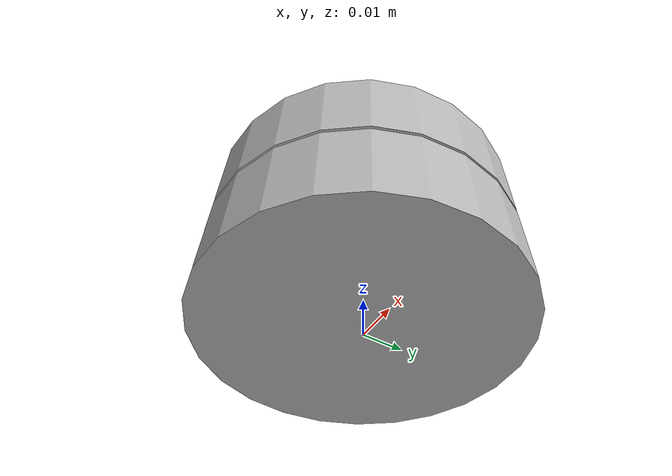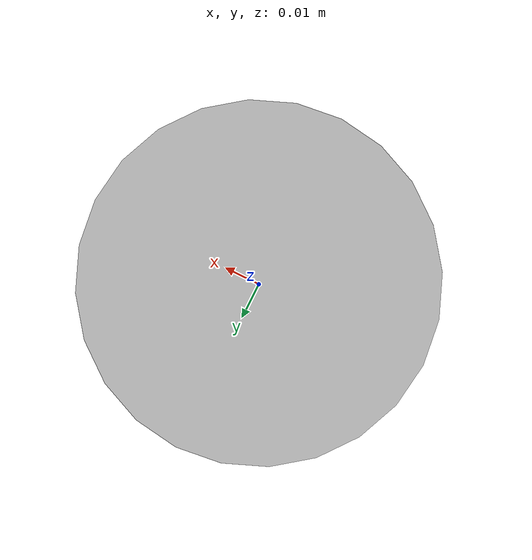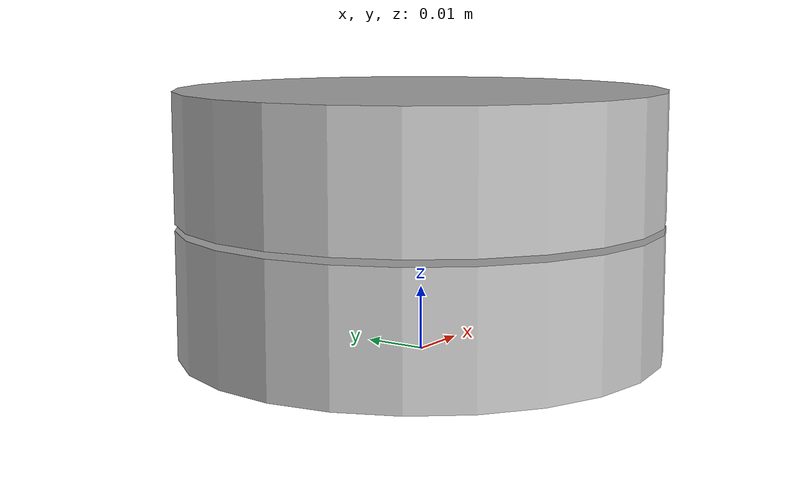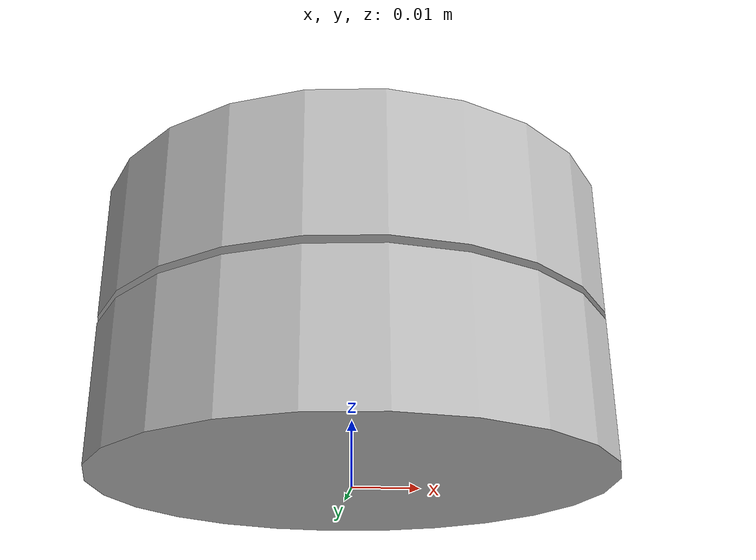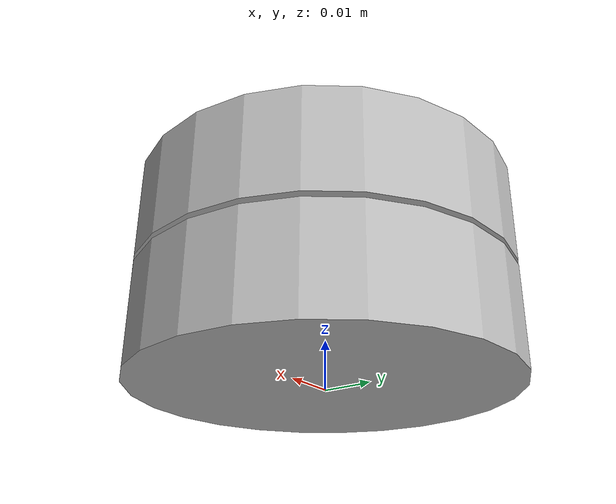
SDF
<?xml version="1.0" ?>
<sdf version="1.5">
<model name="rplidar">
<!-- Give the base link a unique name -->
<link name="base">

    <!-- Offset the base by half the lenght of the cylinder -->
    <pose>0 0 0.01 0 0 0</pose>

    <collision name="base_collision">
      <geometry>
        <cylinder>
          <!-- Radius and length provided by Slamtec -->
          <radius>0.038</radius>
          <length>0.02</length>
        </cylinder>
      </geometry>
    </collision>

    <!-- The visual is mostly a copy of the collision -->
    <visual name="base_visual">
      <geometry>
        <cylinder>
          <radius>0.038</radius>
          <length>0.02</length>
        </cylinder>
      </geometry>
    </visual>
  </link>
  <!-- Give the base link a unique name -->
  <link name="top">
    <!-- Add a ray sensor, and give it a name -->
    <sensor type="ray" name="sensor">

      <!-- Position the ray sensor based on the specification. Also rotate
          it by 90 degrees around the Z-axis to become Horizontal -->
      <pose>0 0 0.002 0 0 1.5707</pose>

      <!-- Enable visualization to see the rays in the GUI -->
      <visualize>true</visualize>

  <topic>range</topic>

      <!-- Set the update rate of the sensor -->
      <update_rate>30</update_rate>
      <ray>
        <noise>
          <!-- Use gaussian noise -->
          <type>gaussian</type>
          <mean>0.0</mean>
          <stddev>0.02</stddev>
        </noise>

        <!-- The scan element contains the horizontal and vertical beams.
            We are leaving out the vertical beams. -->
        <scan>

          <!-- The horizontal beams -->
          <horizontal>
            <!-- The rplidar has 120 beams(samples) -->
            <samples>120</samples>

            <resolution>1</resolution>

            <!-- Minimum angle in radians -->
            <min_angle>0</min_angle>

            <!-- Maximum angle in radians -->
            <max_angle>6.28</max_angle>
          </horizontal>
        </scan>

        <!-- Range defines characteristics of an individual beam -->
        <range>

          <!-- Minimum distance of the beam -->
          <min>0.15</min>

          <!-- Maximum distance of the beam -->
          <max>12</max>

          <!-- Linear resolution of the beam -->
          <resolution>0.02</resolution>
        </range>
      </ray>
      <plugin name="sensor_plugin" filename="libgazebo_ros_laser.so">
    <topicName>/my_car/rplidar/scan</topicName>
    <frameName>/my_robot/odom</frameName>
  </plugin>
    </sensor>

    <!-- Vertically offset the top cylinder by the length of the bottom
        cylinder and half the length of this cylinder. -->
    <pose>0 0 0.031 0 0 0</pose>
    <collision name="top_collision">
      <geometry>
        <cylinder>
          <!-- Radius and length provided by Velodyne -->
          <radius>0.038</radius>
          <length>0.02</length>
        </cylinder>
      </geometry>
    </collision>

    <!-- The visual is mostly a copy of the collision -->
    <visual name="top_visual">
      <geometry>
        <cylinder>
          <radius>0.038</radius>
          <length>0.02</length>
        </cylinder>
      </geometry>
    </visual>
  </link>
  <!-- Each joint must have a unique name -->
  <joint type="revolute" name="joint">
    <!-- Position the joint at the bottom of the top link -->
    <pose>0 0 -0.016 0 0 0</pose>

    <!-- Use the base link as the parent of the joint -->
    <parent>base</parent>

    <!-- Use the top link as the child of the joint -->
    <child>top</child>

    <!-- The axis defines the joint's degree of freedom -->
    <axis>

      <!-- Revolve around the z-axis -->
      <xyz>0 0 1</xyz>

      <!-- Limit refers to the range of motion of the joint -->
      <limit>

        <!-- Use a very large number to indicate a continuous revolution -->
        <lower>-10000000000000000</lower>
        <upper>10000000000000000</upper>
      </limit>
    </axis>
  </joint>
</model>

</sdf>
